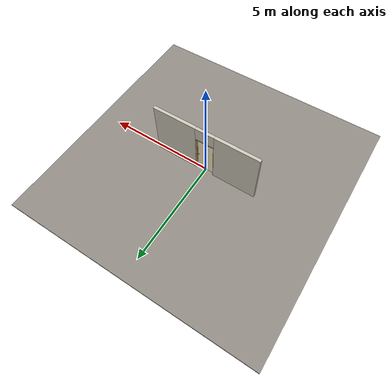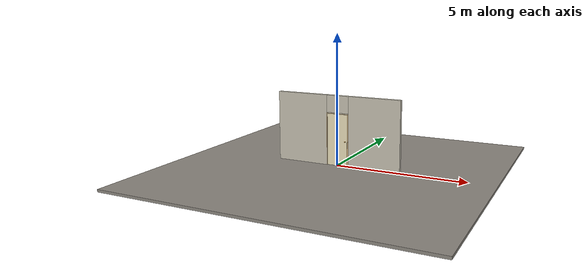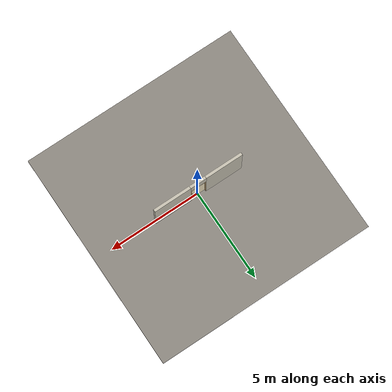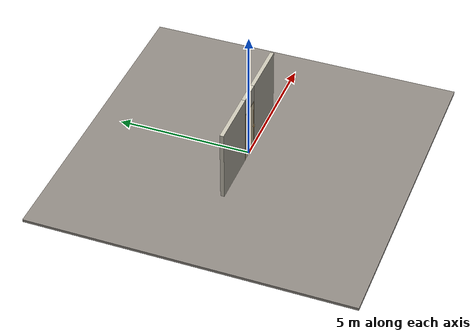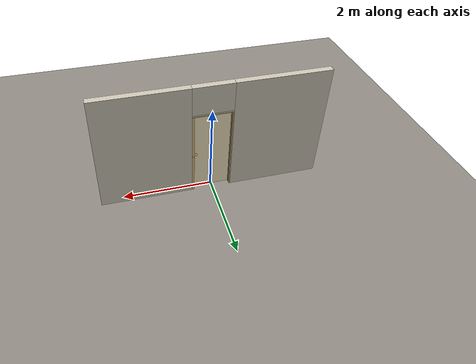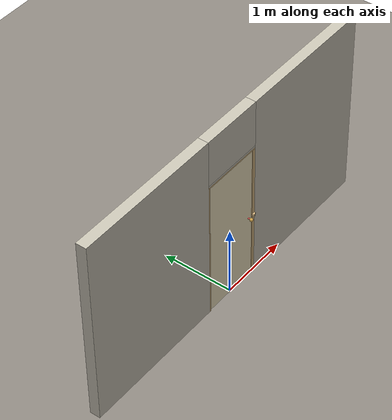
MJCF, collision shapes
<?xml version="1.0" ?>
<mujoco model="db0642_swing_single_simple">
  <compiler angle="radian" meshdir="../../hardware" texturedir="../../textures" autolimits="true" inertiafromgeom="false"/>
  <option timestep="0.002" integrator="implicitfast" cone="elliptic" impratio="10" noslip_iterations="3">
    <flag multiccd="enable"/>
  </option>
  <size memory="16M"/>
  <default>
    <geom condim="4" solref="0.005 1" solimp="0.95 0.99 0.001"/>
    <joint solreflimit="0.005 1" solimplimit="0.95 0.99 0.001"/>
    <tendon solreflimit="0.005 1"/>
    <equality solref="0.002 1"/>
  </default>
  <visual>
    <headlight ambient="0.4 0.4 0.4" diffuse="0.7 0.7 0.7" specular="0.2 0.2 0.2"/>
    <quality shadowsize="4096"/>
    <map znear="0.01" zfar="60"/>
  </visual>
  <asset>
    <mesh name="hinge_96510cf394" file="hinge_96510cf394.obj"/>
    <mesh name="hinge_jamb_7fd4ca52b2" file="hinge_jamb_7fd4ca52b2.obj"/>
    <mesh name="knob_d1888f6f03" file="knob_d1888f6f03.obj"/>
    <material name="mat_floor" rgba="0.55 0.53 0.5 1" specular="0.2" shininess="0.15" reflectance="0"/>
    <material name="mat_wall" rgba="0.78 0.76 0.7 1" specular="0.2" shininess="0.1" reflectance="0"/>
    <material name="mat_leaf" rgba="0.93 0.88 0.74 1" specular="0.2" shininess="0.41" reflectance="0"/>
    <material name="mat_leaf_louver" rgba="0.79 0.748 0.629 1" specular="0.2" shininess="0.4" reflectance="0"/>
    <material name="mat_hinge" rgba="0.65 0.66 0.68 1" specular="0.74" shininess="0.5" reflectance="0.36"/>
    <material name="mat_op_brass" rgba="0.85 0.66 0.3 1" specular="0.8" shininess="0.75" reflectance="0.4"/>
    <material name="mat_trim" rgba="0.85 0.66 0.3 1" specular="0.8" shininess="0.75" reflectance="0.4"/>
    <material name="mat_bolt" rgba="0.85 0.66 0.3 1" specular="0.8" shininess="0.75" reflectance="0.4"/>
    <material name="mat_frame" rgba="0.82 0.7 0.5 1" specular="0.2" shininess="0.45" reflectance="0"/>
    <texture name="skybox" type="skybox" builtin="gradient" rgb1="0.6 0.7 0.85" rgb2="0.9 0.92 0.95" width="256" height="256"/>
  </asset>
  <worldbody>
    <light name="sun" pos="1.5 -2.5 4" dir="-0.3 0.5 -0.8" directional="true" diffuse="0.8 0.8 0.8" specular="0.3 0.3 0.3" castshadow="true"/>
    <light name="fill" pos="-1.5 2.5 3" dir="0.3 -0.5 -0.7" directional="true" diffuse="0.35 0.35 0.4" castshadow="false"/>
    <camera name="robot_view" pos="0 -2.450125 1.698475" xyaxes="1 0 0 0 0.26963 0.962964" fovy="52"/>
    <camera name="far_view" pos="0 2.546125 1.698475" xyaxes="-1 0 0 0 -0.26963 0.962964" fovy="52"/>
    <camera name="iso" pos="1.898575 -2.050425 2.098175" xyaxes="0.741536 0.670913 0 -0.242917 0.268487 0.932151" fovy="46"/>
    <camera name="detail_handle" pos="0.526 -0.864 1.245" xyaxes="0.97561 0.219512 0 -0.070934 0.315262 0.94635" fovy="38"/>
    <geom name="floor" type="box" size="6 6 0.05" pos="0 0 -0.05" material="mat_floor" group="0" contype="1" conaffinity="1" friction="0.8 0.005 0.0001" density="2400"/>
    <geom name="wall_left" type="box" size="1.0355 0.0725 1.35" pos="-1.4645 0.048 1.35" material="mat_wall" group="0" contype="1" conaffinity="1" friction="0.6 0.005 0.0001" density="800"/>
    <geom name="wall_right" type="box" size="1.0205 0.0725 1.35" pos="1.4795 0.048 1.35" material="mat_wall" group="0" contype="1" conaffinity="1" friction="0.6 0.005 0.0001" density="800"/>
    <geom name="wall_header" type="box" size="0.444 0.0725 0.3265" pos="0.015 0.048 2.3735" material="mat_wall" group="0" contype="1" conaffinity="1" friction="0.6 0.005 0.0001" density="800"/>
    <geom name="hinge_0_jamb" type="mesh" mesh="hinge_jamb_7fd4ca52b2" pos="-0.407 -0.0245 0.259" material="mat_hinge" group="1" contype="0" conaffinity="0" density="7850"/>
    <geom name="hinge_1_jamb" type="mesh" mesh="hinge_jamb_7fd4ca52b2" pos="-0.407 -0.0245 1.0015" material="mat_hinge" group="1" contype="0" conaffinity="0" density="7850"/>
    <geom name="hinge_2_jamb" type="mesh" mesh="hinge_jamb_7fd4ca52b2" pos="-0.407 -0.0245 1.814" material="mat_hinge" group="1" contype="0" conaffinity="0" density="7850"/>
    <geom name="jamb_hinge" type="box" size="0.0095 0.0725 0.999" pos="-0.4195 0.048 0.999" material="mat_frame" group="0" contype="1" conaffinity="1" friction="0.6 0.005 0.0001" density="400"/>
    <geom name="strike_965_wall_n" type="box" size="0.0245 0.056325 0.0167" pos="0.4345 0.064175 0.965" material="mat_frame" group="0" contype="1" conaffinity="1" friction="0.6 0.005 0.0001" density="400"/>
    <geom name="strike_965_wall_p" type="box" size="0.0245 0.008 0.0167" pos="0.4345 -0.01585 0.965" material="mat_frame" group="0" contype="1" conaffinity="1" friction="0.6 0.005 0.0001" density="400"/>
    <geom name="strike_965_ramp" type="box" size="0.0245 0.01649 0.0167" pos="0.439136 -0.028673 0.965" quat="0.977148 0 0 0.212558" material="mat_frame" group="0" contype="1" conaffinity="1" friction="0.12 0.005 0.0001" density="400"/>
    <geom name="strike_965_back" type="box" size="0.01615 0.00785 0.0167" pos="0.44285 0 0.965" material="mat_frame" group="0" contype="1" conaffinity="1" friction="0.6 0.005 0.0001" density="400"/>
    <geom name="jamb_strike_0" type="box" size="0.0245 0.0725 0.47415" pos="0.4345 0.048 0.47415" material="mat_frame" group="0" contype="1" conaffinity="1" friction="0.6 0.005 0.0001" density="400"/>
    <geom name="jamb_strike_1" type="box" size="0.0245 0.0725 0.50815" pos="0.4345 0.048 1.48985" material="mat_frame" group="0" contype="1" conaffinity="1" friction="0.6 0.005 0.0001" density="400"/>
    <geom name="jamb_head" type="box" size="0.444 0.0725 0.0095" pos="0.015 0.048 2.0075" material="mat_frame" group="0" contype="1" conaffinity="1" friction="0.6 0.005 0.0001" density="400"/>
    <geom name="head_stud" type="box" size="0.444 0.0725 0.015" pos="0.015 0.048 2.032" material="mat_wall" group="0" contype="1" conaffinity="1" friction="0.6 0.005 0.0001" density="500"/>
    <geom name="stop_hinge" type="box" size="0.0055 0.016 0.999" pos="-0.4045 0.034 0.999" material="mat_frame" group="0" contype="1" conaffinity="1" friction="0.6 0.005 0.0001" density="400"/>
    <geom name="stop_strike" type="box" size="0.0055 0.016 0.999" pos="0.4045 0.034 0.999" material="mat_frame" group="0" contype="1" conaffinity="1" friction="0.6 0.005 0.0001" density="400"/>
    <geom name="stop_head" type="box" size="0.41 0.016 0.0055" pos="0 0.034 1.9925" material="mat_frame" group="0" contype="1" conaffinity="1" friction="0.6 0.005 0.0001" density="400"/>
    <site name="approach_point" pos="0 -1.5 0" quat="1 0 0 0" size="0.05" rgba="0.2 0.9 0.2 0.5" group="4"/>
    <site name="goal_point" pos="0 1.5 0" quat="1 0 0 0" size="0.05" rgba="0.2 0.9 0.2 0.5" group="4"/>
    <site name="door_plane_center" pos="0 0 0.999" quat="1 0 0 0" size="0.02" rgba="0.2 0.9 0.2 0.5" group="4"/>
    <body name="leaf" pos="-0.41 0 0">
      <inertial pos="0.396924 -0.000468 1.002207" mass="13.430918" quat="-0.499503 0.501066 -0.498917 -0.500511" diaginertia="0.78816165 4.439582359 5.224786805"/>
      <joint name="leaf_hinge" type="hinge" axis="0 0 -1" pos="0.003 -0.0245 0" limited="true" range="0 2.356194" damping="0.206618" frictionloss="0.529286" armature="0.02"/>
      <geom name="leaf_slab" type="box" size="0.4065 0.0175 0.9925" pos="0.4095 0 1.0015" material="mat_leaf" group="0" contype="1" conaffinity="1" friction="0.35 0.005 0.0001" density="1"/>
      <geom name="hinge_0" type="mesh" mesh="hinge_96510cf394" pos="0.003 -0.0245 0.259" material="mat_hinge" group="1" contype="0" conaffinity="0" density="7850"/>
      <geom name="hinge_1" type="mesh" mesh="hinge_96510cf394" pos="0.003 -0.0245 1.0015" material="mat_hinge" group="1" contype="0" conaffinity="0" density="7850"/>
      <geom name="hinge_2" type="mesh" mesh="hinge_96510cf394" pos="0.003 -0.0245 1.814" material="mat_hinge" group="1" contype="0" conaffinity="0" density="7850"/>
      <geom name="leaf_latch_bolt_faceplate" type="box" size="0.0006 0.01235 0.0267" pos="0.8154 0 0.965" material="mat_bolt" group="1" contype="0" conaffinity="0" density="8500"/>
      <site name="leaf_edge_mid" pos="0.816 0 0.9925" quat="1 0 0 0" size="0.02" rgba="0.2 0.9 0.2 0.5" group="4"/>
      <body name="leaf_handle" pos="0.756 0 0.965">
        <inertial pos="0 0 0" mass="1.098683" quat="-0.5 0.5 -0.5 0.5" diaginertia="0.000311555 0.003696071 0.003696071"/>
        <joint name="leaf_handle_hinge" type="hinge" axis="0 -1 0" limited="true" range="0 0.87" damping="0.143613" frictionloss="0.038" stiffness="0.5" springref="-0.5" armature="0.01"/>
        <geom name="leaf_handle_knob_n" type="mesh" mesh="knob_d1888f6f03" pos="0 -0.0175 0" quat="0.707107 0.707107 0 0" material="mat_op_brass" group="1" contype="0" conaffinity="0" density="3000"/>
        <geom name="leaf_handle_knob_col_n" type="sphere" size="0.0243" pos="0 -0.064 0" material="mat_op_brass" group="0" contype="1" conaffinity="1" friction="0.9 0.01 0.0001" density="3000"/>
        <geom name="leaf_handle_knob_neck_n" type="cylinder" size="0.011 0.012" pos="0 -0.0295 0" quat="0.707107 -0.707107 0 0" material="mat_op_brass" group="3" contype="1" conaffinity="1" rgba="0.8 0.3 0.3 0.25" friction="0.6 0.005 0.0001" density="3000"/>
        <geom name="leaf_handle_knob_p" type="mesh" mesh="knob_d1888f6f03" pos="0 0.0175 0" quat="-0.707107 0.707107 0 0" material="mat_op_brass" group="1" contype="0" conaffinity="0" density="3000"/>
        <geom name="leaf_handle_knob_col_p" type="sphere" size="0.0243" pos="0 0.064 0" material="mat_op_brass" group="0" contype="1" conaffinity="1" friction="0.9 0.01 0.0001" density="3000"/>
        <geom name="leaf_handle_knob_neck_p" type="cylinder" size="0.011 0.012" pos="0 0.0295 0" quat="0.707107 -0.707107 0 0" material="mat_op_brass" group="3" contype="1" conaffinity="1" rgba="0.8 0.3 0.3 0.25" friction="0.6 0.005 0.0001" density="3000"/>
        <site name="leaf_handle_grip_n" pos="0 -0.064 0" quat="1 0 0 0" size="0.012" rgba="0.2 0.9 0.2 0.5" group="4"/>
        <site name="leaf_handle_grip_p" pos="0 0.064 0" quat="1 0 0 0" size="0.012" rgba="0.2 0.9 0.2 0.5" group="4"/>
      </body>
      <body name="leaf_latch_bolt" pos="0.816 0 0.965">
        <inertial pos="-0.00865 0 0" mass="0.041419" quat="0.92388 -0.382683 0 0" diaginertia="0.000000798 0.000005598 0.000005598"/>
        <joint name="leaf_latch_bolt_slide" type="slide" axis="-1 0 0" limited="true" range="0 0.0127" damping="2" frictionloss="0.3" stiffness="300" springref="-0.008333" armature="0.1"/>
        <geom name="leaf_latch_bolt_capsule" type="capsule" size="0.00635 0.015" pos="-0.00865 0 0" quat="0.707107 0 0.707107 0" material="mat_bolt" group="0" contype="1" conaffinity="1" friction="0.2 0.005 0.0001" density="8500"/>
      </body>
    </body>
  </worldbody>
  <tendon>
    <fixed name="leaf_latch_bolt_coupling" limited="true" range="0 10">
      <joint joint="leaf_latch_bolt_slide" coef="1"/>
      <joint joint="leaf_handle_hinge" coef="-0.015679"/>
    </fixed>
  </tendon>
  <sensor>
    <jointpos name="leaf_hinge_pos" joint="leaf_hinge"/>
    <jointvel name="leaf_hinge_vel" joint="leaf_hinge"/>
    <jointpos name="leaf_handle_hinge_pos" joint="leaf_handle_hinge"/>
    <jointvel name="leaf_handle_hinge_vel" joint="leaf_handle_hinge"/>
    <jointpos name="leaf_latch_bolt_slide_pos" joint="leaf_latch_bolt_slide"/>
    <jointvel name="leaf_latch_bolt_slide_vel" joint="leaf_latch_bolt_slide"/>
  </sensor>
</mujoco>
